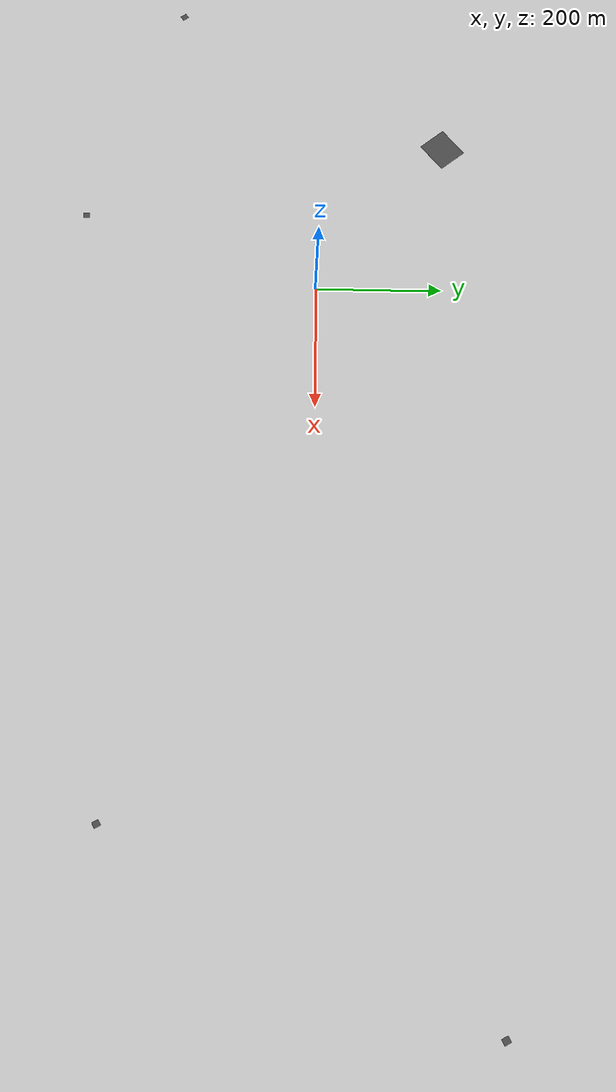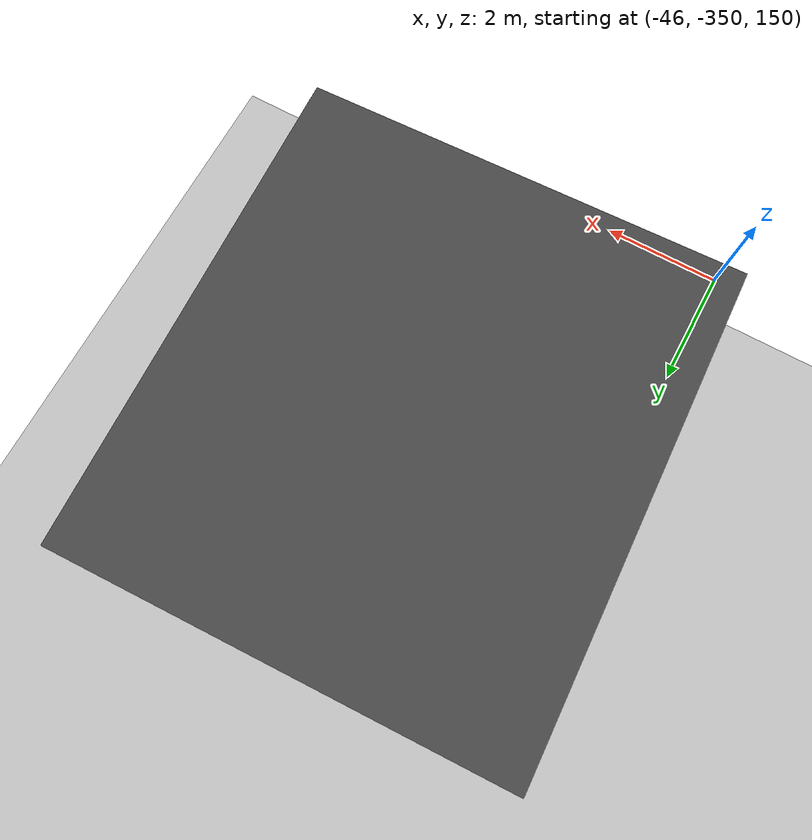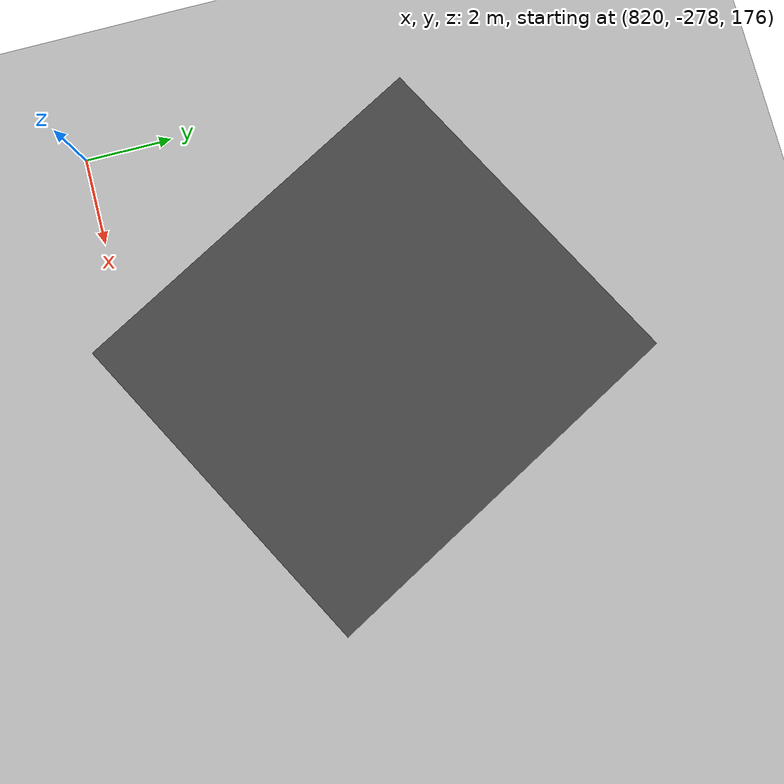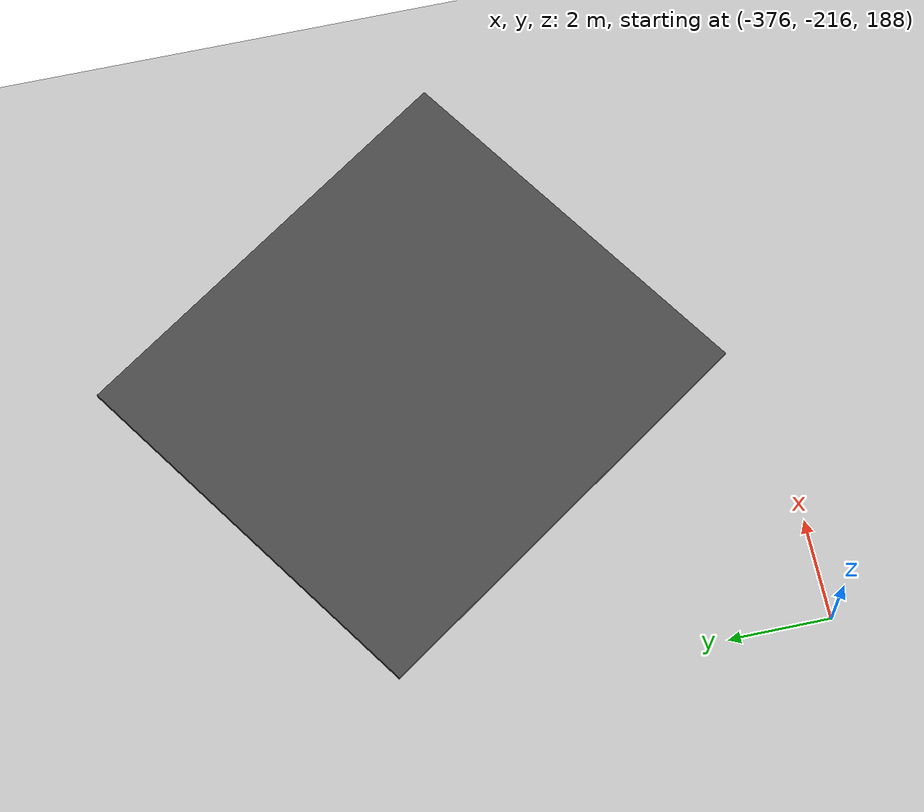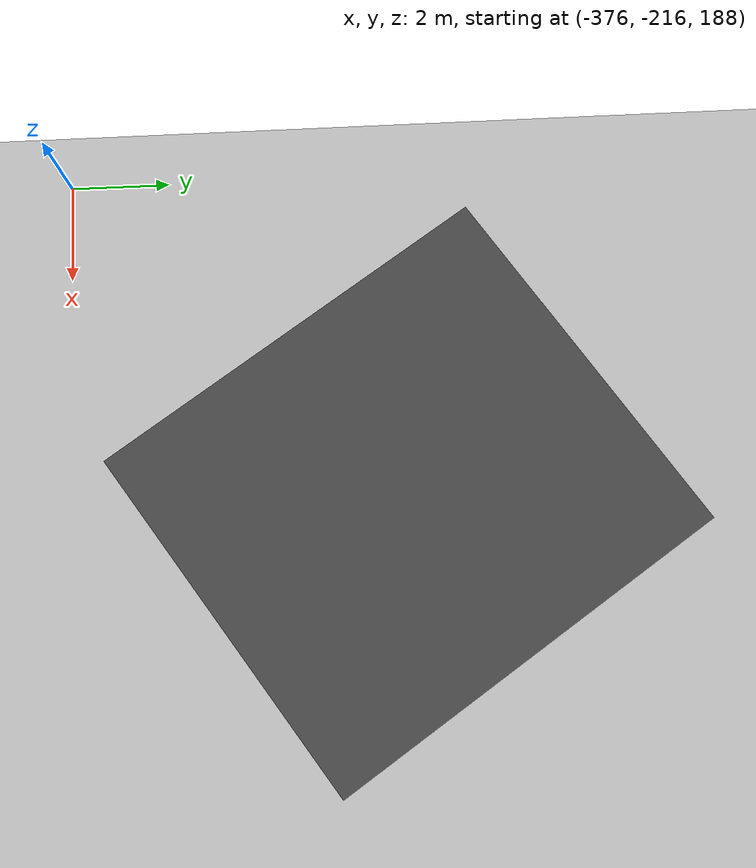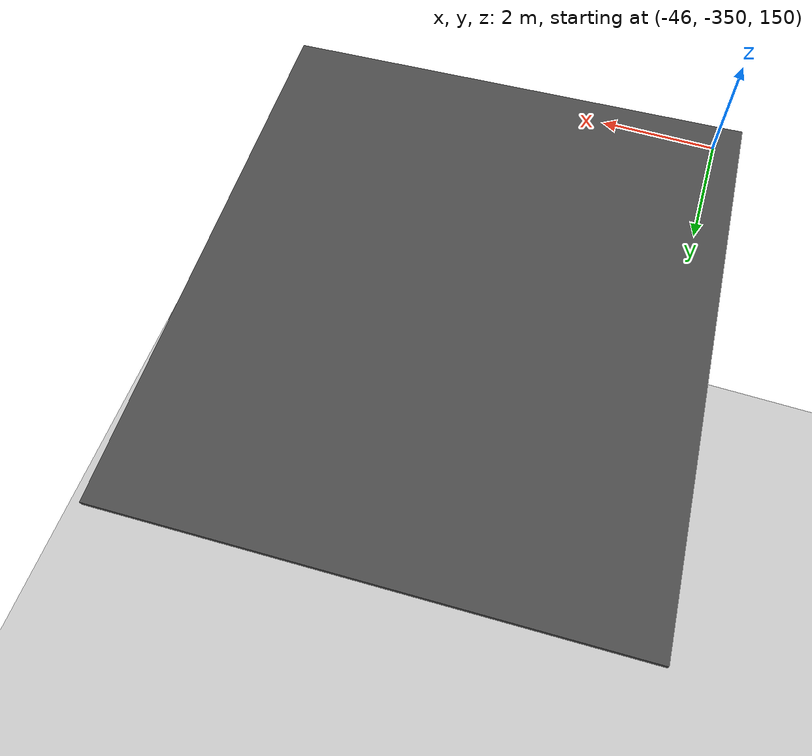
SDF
<sdf version="1.7">
 <world name="default">
  <light name="sun" type="directional">
   <pose>0 0 10 0 -0 0</pose>
   <diffuse>0.8 0.8 0.8 1</diffuse>
   <specular>0.2 0.2 0.2 1</specular>
   <attenuation>
    <range>1000</range>
    <constant>0.9</constant>
    <linear>0.01</linear>
    <quadratic>0.001</quadratic>
   </attenuation>
   <direction>-0.5 0.1 -0.9</direction>
   <spot><inner_angle>0</inner_angle><outer_angle>0</outer_angle><falloff>0</falloff></spot>
  </light>
  <model name="ground_plane">
   <static>1</static>
   <link name="link">
    <collision name="collision">
     <geometry><plane><normal>0 0 1</normal><size>100 100</size></plane></geometry>
     <surface>
      <contact><collide_bitmask>65535</collide_bitmask></contact>
      <friction><ode><mu>100</mu><mu2>50</mu2></ode></friction>
     </surface>
    </collision>
    <visual name="visual">
     <cast_shadows>0</cast_shadows>
     <geometry><plane><normal>0 0 1</normal><size>100 100</size></plane></geometry>
     <material>
      <script><uri>file://media/materials/scripts/gazebo.material</uri><name>Gazebo/Grey</name></script>
     </material>
    </visual>
   </link>
  </model>
  <gravity>0 0 -9.8</gravity>
  <magnetic_field>6e-06 2.3e-05 -4.2e-05</magnetic_field>
  <atmosphere type="adiabatic"/>
  <physics type="ode">
   <max_step_size>0.001</max_step_size>
   <real_time_factor>1</real_time_factor>
   <real_time_update_rate>1000</real_time_update_rate>
  </physics>
  <scene><ambient>0.4 0.4 0.4 1</ambient><background>0.7 0.7 0.7 1</background><shadows>1</shadows></scene>
  <audio><device>default</device></audio>
  <spherical_coordinates>
   <surface_model>EARTH_WGS84</surface_model>
   <latitude_deg>0</latitude_deg>
   <longitude_deg>0</longitude_deg>
   <elevation>0</elevation>
   <heading_deg>0</heading_deg>
  </spherical_coordinates>
  <model name="asphalt_plane">
   <static>1</static>
   <link name="link">
    <collision name="collision"><geometry><box><size>48.8154 43.7814 0.1</size></box></geometry></collision>
    <visual name="visual">
     <cast_shadows>0</cast_shadows>
     <geometry><box><size>48.8154 43.7814 0.1</size></box></geometry>
     <material>
      <script>
       <uri>model://asphalt_plane/materials/scripts</uri>
       <uri>model://asphalt_plane/materials/textures</uri>
       <name>vrc/asphalt</name>
      </script>
     </material>
    </visual>
   </link>
   <pose>-158.72 186.564 156.394 0 -0 0.683281</pose>
  </model>
  <model name="asphalt_plane_clone">
   <static>1</static>
   <link name="link">
    <collision name="collision"><geometry><box><size>8.19414 9.13629 0.1</size></box></geometry></collision>
    <visual name="visual">
     <cast_shadows>0</cast_shadows>
     <geometry><box><size>8.19414 9.13629 0.1</size></box></geometry>
     <material>
      <script>
       <uri>model://asphalt_plane/materials/scripts</uri>
       <uri>model://asphalt_plane/materials/textures</uri>
       <name>vrc/asphalt</name>
      </script>
     </material>
    </visual>
   </link>
   <pose>-42.4828 -345.417 150.381 0 -0 0.038555</pose>
  </model>
  <model name="asphalt_plane_clone_clone">
   <static>1</static>
   <link name="link">
    <collision name="collision"><geometry><box><size>8.19414 9.13629 0.1</size></box></geometry></collision>
    <visual name="visual">
     <cast_shadows>0</cast_shadows>
     <geometry><box><size>8.19414 9.13629 0.1</size></box></geometry>
     <material>
      <script>
       <uri>model://asphalt_plane/materials/scripts</uri>
       <uri>model://asphalt_plane/materials/textures</uri>
       <name>vrc/asphalt</name>
      </script>
     </material>
    </visual>
   </link>
   <pose>1057.98 218.421 223.654 0 -0 0.475873</pose>
  </model>
  <model name="asphalt_plane_clone_clone_clone">
   <static>1</static>
   <link name="link">
    <collision name="collision"><geometry><box><size>8.19414 9.13629 0.1</size></box></geometry></collision>
    <visual name="visual">
     <cast_shadows>0</cast_shadows>
     <geometry><box><size>8.19414 9.13629 0.1</size></box></geometry>
     <material>
      <script>
       <uri>model://asphalt_plane/materials/scripts</uri>
       <uri>model://asphalt_plane/materials/textures</uri>
       <name>vrc/asphalt</name>
      </script>
     </material>
    </visual>
   </link>
   <pose>825.897 -272.725 176.499 0 -0 0.491665</pose>
  </model>
  <model name="asphalt_plane_clone_clone_clone_clone">
   <static>1</static>
   <link name="link">
    <collision name="collision"><geometry><box><size>8.19414 9.13629 0.1</size></box></geometry></collision>
    <visual name="visual">
     <cast_shadows>0</cast_shadows>
     <geometry><box><size>8.19414 9.13629 0.1</size></box></geometry>
     <material>
      <script>
       <uri>model://asphalt_plane/materials/scripts</uri>
       <uri>model://asphalt_plane/materials/textures</uri>
       <name>vrc/asphalt</name>
      </script>
     </material>
    </visual>
   </link>
   <pose>-369.394 -209.363 187.679 0 -0 0.590318</pose>
  </model>
 </world>
</sdf>
